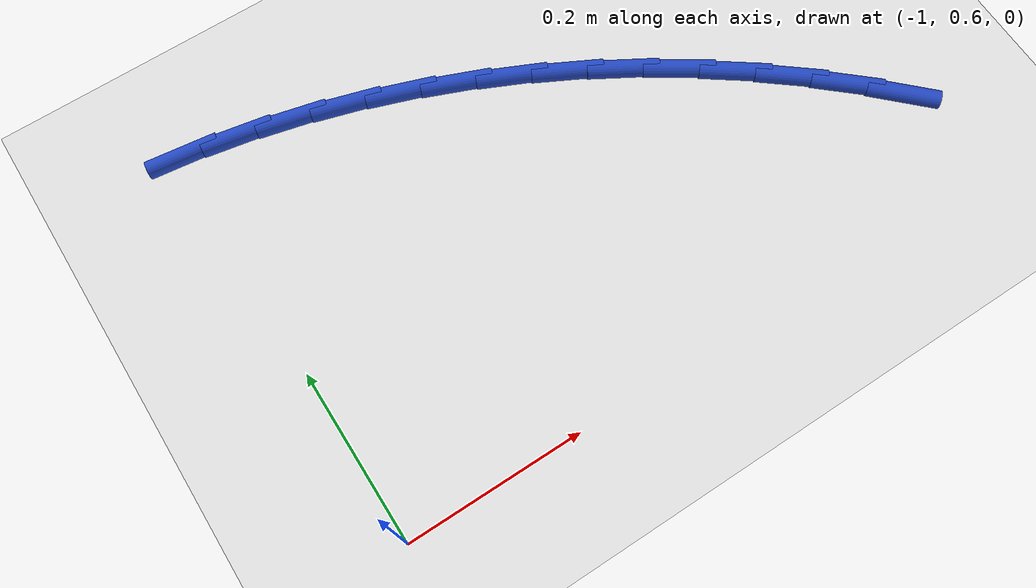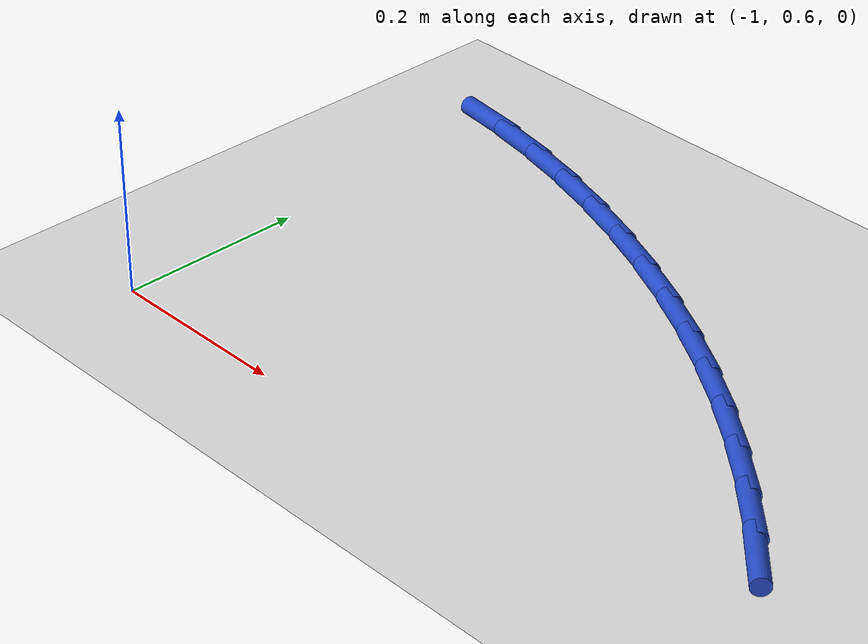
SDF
<sdf version="1.6">
 <world name="default">
  <model name="ground_plane">
   <static>1</static>
   <link name="link">
    <collision name="collision">
     <geometry><plane><normal>0 0 1</normal><size>100 100</size></plane></geometry>
     <surface><friction><ode><mu>100</mu><mu2>50</mu2></ode></friction></surface>
    </collision>
    <visual name="visual">
     <cast_shadows>0</cast_shadows>
     <geometry><plane><normal>0 0 1</normal><size>100 100</size></plane></geometry>
     <material>
      <script><uri>file://media/materials/scripts/gazebo.material</uri><name>Gazebo/WhiteGlow</name></script>
     </material>
    </visual>
   </link>
  </model>
  <model name="line">
   <link name="link_13">
    <pose>-0.2988756957930068 0.7186847333455536 0.01 0 1.57 -0.7760554178090717</pose>
    <collision name="collision">
     <geometry><cylinder><radius>0.01</radius><length>0.08</length></cylinder></geometry>
    </collision>
    <visual name="visual">
     <material>
      <script><name>Gazebo/Blue</name><uri>file://media/materials/scripts/gazebo.material</uri></script>
     </material>
     <geometry><cylinder><radius>0.01</radius><length>0.08</length></cylinder></geometry>
    </visual>
   </link>
   <link name="link_14">
    <pose>-0.34277822308147166 0.7617744902068488 0.01 0 1.57 -0.7243283026008661</pose>
    <collision name="collision">
     <geometry><cylinder><radius>0.01</radius><length>0.08</length></cylinder></geometry>
    </collision>
    <visual name="visual">
     <material>
      <script><name>Gazebo/Blue</name><uri>file://media/materials/scripts/gazebo.material</uri></script>
     </material>
     <geometry><cylinder><radius>0.01</radius><length>0.08</length></cylinder></geometry>
    </visual>
   </link>
   <link name="link_15">
    <pose>-0.38890024351810276 0.8025811770520415 0.01 0 1.57 -0.673768813109289</pose>
    <collision name="collision">
     <geometry><cylinder><radius>0.01</radius><length>0.08</length></cylinder></geometry>
    </collision>
    <visual name="visual">
     <material>
      <script><name>Gazebo/Blue</name><uri>file://media/materials/scripts/gazebo.material</uri></script>
     </material>
     <geometry><cylinder><radius>0.01</radius><length>0.08</length></cylinder></geometry>
    </visual>
   </link>
   <link name="link_16">
    <pose>-0.43706206432214595 0.8410339093464383 0.01 0 1.57 -0.6241824058856836</pose>
    <collision name="collision">
     <geometry><cylinder><radius>0.01</radius><length>0.08</length></cylinder></geometry>
    </collision>
    <visual name="visual">
     <material>
      <script><name>Gazebo/Blue</name><uri>file://media/materials/scripts/gazebo.material</uri></script>
     </material>
     <geometry><cylinder><radius>0.01</radius><length>0.08</length></cylinder></geometry>
    </visual>
   </link>
   <link name="link_17">
    <pose>-0.487083992712847 0.8770618025553462 0.01 0 1.57 -0.5753635848007478</pose>
    <collision name="collision">
     <geometry><cylinder><radius>0.01</radius><length>0.08</length></cylinder></geometry>
    </collision>
    <visual name="visual">
     <material>
      <script><name>Gazebo/Blue</name><uri>file://media/materials/scripts/gazebo.material</uri></script>
     </material>
     <geometry><cylinder><radius>0.01</radius><length>0.08</length></cylinder></geometry>
    </visual>
   </link>
   <link name="link_18">
    <pose>-0.5387863359094519 0.9105939721440711 0.01 0 1.57 -0.5270983922223521</pose>
    <collision name="collision">
     <geometry><cylinder><radius>0.01</radius><length>0.08</length></cylinder></geometry>
    </collision>
    <visual name="visual">
     <material>
      <script><name>Gazebo/Blue</name><uri>file://media/materials/scripts/gazebo.material</uri></script>
     </material>
     <geometry><cylinder><radius>0.01</radius><length>0.08</length></cylinder></geometry>
    </visual>
   </link>
   <link name="link_19">
    <pose>-0.5919894011312063 0.94155953357792 0.01 0 1.57 -0.47916609747210803</pose>
    <collision name="collision">
     <geometry><cylinder><radius>0.01</radius><length>0.08</length></cylinder></geometry>
    </collision>
    <visual name="visual">
     <material>
      <script><name>Gazebo/Blue</name><uri>file://media/materials/scripts/gazebo.material</uri></script>
     </material>
     <geometry><cylinder><radius>0.01</radius><length>0.08</length></cylinder></geometry>
    </visual>
   </link>
   <link name="link_20">
    <pose>-0.6465134955973566 0.9698876023221996 0.01 0 1.57 -0.4313402704509484</pose>
    <collision name="collision">
     <geometry><cylinder><radius>0.01</radius><length>0.08</length></cylinder></geometry>
    </collision>
    <visual name="visual">
     <material>
      <script><name>Gazebo/Blue</name><uri>file://media/materials/scripts/gazebo.material</uri></script>
     </material>
     <geometry><cylinder><radius>0.01</radius><length>0.08</length></cylinder></geometry>
    </visual>
   </link>
   <link name="link_21">
    <pose>-0.702178926544859 0.9955072938372264 0.01 0 1.57 -0.3831763919931939</pose>
    <collision name="collision">
     <geometry><cylinder><radius>0.01</radius><length>0.08</length></cylinder></geometry>
    </collision>
    <visual name="visual">
     <material>
      <script><name>Gazebo/Blue</name><uri>file://media/materials/scripts/gazebo.material</uri></script>
     </material>
     <geometry><cylinder><radius>0.01</radius><length>0.08</length></cylinder></geometry>
    </visual>
   </link>
   <link name="link_22">
    <pose>-0.7588264821194197 1.0183419538535872 0.01 0 1.57 -0.33370006017706594</pose>
    <collision name="collision">
     <geometry><cylinder><radius>0.01</radius><length>0.08</length></cylinder></geometry>
    </collision>
    <visual name="visual">
     <material>
      <script><name>Gazebo/Blue</name><uri>file://media/materials/scripts/gazebo.material</uri></script>
     </material>
     <geometry><cylinder><radius>0.01</radius><length>0.08</length></cylinder></geometry>
    </visual>
   </link>
   <link name="link_23">
    <pose>-0.8163765441011627 1.0382925055734271 0.01 0 1.57 -0.28270218515859014</pose>
    <collision name="collision">
     <geometry><cylinder><radius>0.01</radius><length>0.08</length></cylinder></geometry>
    </collision>
    <visual name="visual">
     <material>
      <script><name>Gazebo/Blue</name><uri>file://media/materials/scripts/gazebo.material</uri></script>
     </material>
     <geometry><cylinder><radius>0.01</radius><length>0.08</length></cylinder></geometry>
    </visual>
   </link>
   <link name="link_24">
    <pose>-0.8747688266530737 1.0552544260233563 0.01 0 1.57 -0.23021652807863968</pose>
    <collision name="collision">
     <geometry><cylinder><radius>0.01</radius><length>0.08</length></cylinder></geometry>
    </collision>
    <visual name="visual">
     <material>
      <script><name>Gazebo/Blue</name><uri>file://media/materials/scripts/gazebo.material</uri></script>
     </material>
     <geometry><cylinder><radius>0.01</radius><length>0.08</length></cylinder></geometry>
    </visual>
   </link>
   <link name="link_25">
    <pose>-0.9339430439381388 1.0691231922299846 0.01 0 1.57 -0.17631078432434927</pose>
    <collision name="collision">
     <geometry><cylinder><radius>0.01</radius><length>0.08</length></cylinder></geometry>
    </collision>
    <visual name="visual">
     <material>
      <script><name>Gazebo/Blue</name><uri>file://media/materials/scripts/gazebo.material</uri></script>
     </material>
     <geometry><cylinder><radius>0.01</radius><length>0.08</length></cylinder></geometry>
    </visual>
   </link>
   <link name="link_26">
    <pose>-0.9938389101193443 1.079794281219922 0.01 0 1.57 -0.12108938684805082</pose>
    <collision name="collision">
     <geometry><cylinder><radius>0.01</radius><length>0.08</length></cylinder></geometry>
    </collision>
    <visual name="visual">
     <material>
      <script><name>Gazebo/Blue</name><uri>file://media/materials/scripts/gazebo.material</uri></script>
     </material>
     <geometry><cylinder><radius>0.01</radius><length>0.08</length></cylinder></geometry>
    </visual>
   </link>
  </model>
 </world>
</sdf>
